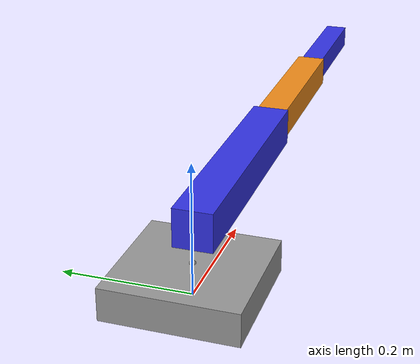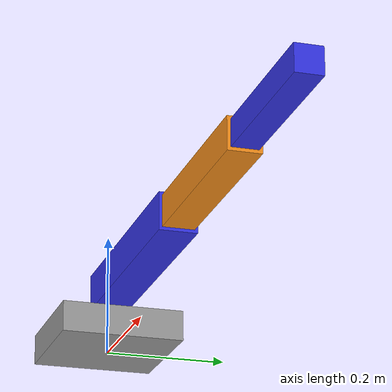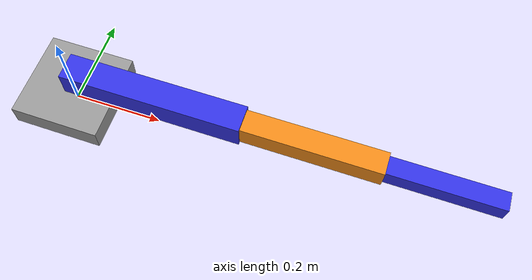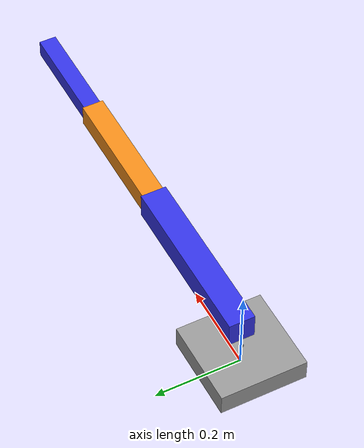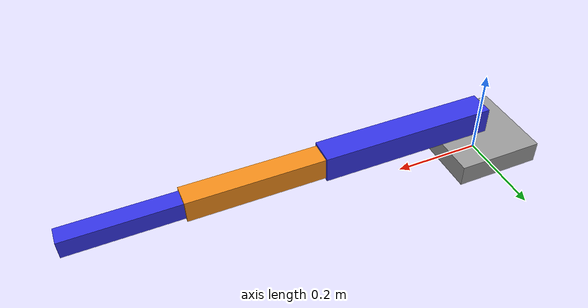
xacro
<?xml version="1.0"?>
<robot name="simple_arm" xmlns:xacro="http://www.ros.org/wiki/xacro">

  <!-- ====== Materials ====== -->
  <material name="gray">   <color rgba="0.6 0.6 0.6 1"/></material>
  <material name="blue">   <color rgba="0.2 0.2 0.9 1"/></material>
  <material name="orange"> <color rgba="0.95 0.55 0.1 1"/></material>

  <!-- ====== Link dimensions & masses ====== -->
  <xacro:property name="base_lx"    value="0.20"/>
  <xacro:property name="base_ly"    value="0.20"/>
  <xacro:property name="base_lz"    value="0.05"/>
  <xacro:property name="base_mass"  value="10.0"/>

  <xacro:property name="link1_lx"   value="0.40"/>
  <xacro:property name="link1_ly"   value="0.06"/>
  <xacro:property name="link1_lz"   value="0.06"/>
  <xacro:property name="link1_mass" value="1.0"/>

  <xacro:property name="link2_lx"   value="0.30"/>
  <xacro:property name="link2_ly"   value="0.05"/>
  <xacro:property name="link2_lz"   value="0.05"/>
  <xacro:property name="link2_mass" value="0.7"/>

  <xacro:property name="link3_lx"   value="0.24"/>
  <xacro:property name="link3_ly"   value="0.04"/>
  <xacro:property name="link3_lz"   value="0.04"/>
  <xacro:property name="link3_mass" value="0.4"/>

  <!-- ====== Joint defaults ====== -->
  <xacro:property name="limit_std" value="1.57"/>
  <xacro:property name="vel_std"   value="1.5"/>
  <xacro:property name="damp_std"  value="0.5"/>
  <xacro:property name="fric_std"  value="0.05"/>

  <!-- ====== Macros ====== -->
  <!--
    box_link: 박스 형태 링크 (visual + collision + inertial 자동 계산)
    CoM 위치(ox, oy, oz)는 링크 프레임 기준 오프셋.
    관성 텐서는 균일 박스 공식으로 계산.
  -->
  <xacro:macro name="box_link" params="name ox oy oz lx ly lz mass color">
    <link name="${name}">
      <visual>
        <origin xyz="${ox} ${oy} ${oz}" rpy="0 0 0"/>
        <geometry><box size="${lx} ${ly} ${lz}"/></geometry>
        <material name="${color}"/>
      </visual>
      <collision>
        <origin xyz="${ox} ${oy} ${oz}" rpy="0 0 0"/>
        <geometry><box size="${lx} ${ly} ${lz}"/></geometry>
      </collision>
      <inertial>
        <origin xyz="${ox} ${oy} ${oz}" rpy="0 0 0"/>
        <mass value="${mass}"/>
        <inertia
          ixx="${mass / 12.0 * (ly*ly + lz*lz)}" ixy="0" ixz="0"
          iyy="${mass / 12.0 * (lx*lx + lz*lz)}" iyz="0"
          izz="${mass / 12.0 * (lx*lx + ly*ly)}"/>
      </inertial>
    </link>
  </xacro:macro>

  <!--
    revolute_joint: 표준 회전 조인트
  -->
  <xacro:macro name="revolute_joint" params="name parent child xyz axis lower upper effort">
    <joint name="${name}" type="revolute">
      <parent link="${parent}"/>
      <child link="${child}"/>
      <origin xyz="${xyz}" rpy="0 0 0"/>
      <axis xyz="${axis}"/>
      <limit lower="${lower}" upper="${upper}" effort="${effort}" velocity="${vel_std}"/>
      <dynamics damping="${damp_std}" friction="${fric_std}"/>
    </joint>
  </xacro:macro>

  <!-- world anchor -->
  <link name="world"/>
  <joint name="world_joint" type="fixed">
    <parent link="world"/>
    <child link="base_link"/>
    <origin xyz="0 0 0" rpy="0 0 0"/>
  </joint>

  <!-- ====== Links ====== -->
  <xacro:box_link name="base_link"
    ox="0" oy="0" oz="${base_lz / 2}"
    lx="${base_lx}" ly="${base_ly}" lz="${base_lz}"
    mass="${base_mass}" color="gray"/>

  <!-- link1_yaw: z축 회전을 위한 더미 링크 (Gazebo가 제거하지 않도록 최소 geometry 포함) -->
  <link name="link1_yaw">
    <visual><origin xyz="0 0 0" rpy="0 0 0"/><geometry><sphere radius="0.005"/></geometry><material name="gray"/></visual>
    <collision><origin xyz="0 0 0" rpy="0 0 0"/><geometry><sphere radius="0.005"/></geometry></collision>
    <inertial>
      <origin xyz="0 0 0" rpy="0 0 0"/>
      <mass value="0.001"/>
      <inertia ixx="1e-6" ixy="0" ixz="0" iyy="1e-6" iyz="0" izz="1e-6"/>
    </inertial>
  </link>

  <xacro:box_link name="link1"
    ox="${link1_lx / 2}" oy="0" oz="0.05"
    lx="${link1_lx}" ly="${link1_ly}" lz="${link1_lz}"
    mass="${link1_mass}" color="blue"/>

  <xacro:box_link name="link2"
    ox="${link2_lx / 2}" oy="0" oz="0.05"
    lx="${link2_lx}" ly="${link2_ly}" lz="${link2_lz}"
    mass="${link2_mass}" color="orange"/>

  <xacro:box_link name="link3"
    ox="${link3_lx / 2}" oy="0" oz="0.05"
    lx="${link3_lx}" ly="${link3_ly}" lz="${link3_lz}"
    mass="${link3_mass}" color="blue"/>

  <!-- ====== Joints ====== -->
  <xacro:revolute_joint name="joint1_z"
    parent="base_link" child="link1_yaw"
    xyz="0 0 ${base_lz}" axis="0 0 1"
    lower="-${limit_std}" upper="${limit_std}" effort="10"/>

  <xacro:revolute_joint name="joint1_y"
    parent="link1_yaw" child="link1"
    xyz="0 0 0" axis="0 -1 0"
    lower="0.0" upper="${limit_std}" effort="10"/>

  <xacro:revolute_joint name="joint2"
    parent="link1" child="link2"
    xyz="${link1_lx} 0 0" axis="0 1 0"
    lower="-${limit_std}" upper="${limit_std}" effort="10"/>

  <xacro:revolute_joint name="joint3"
    parent="link2" child="link3"
    xyz="${link2_lx} 0 0" axis="0 1 0"
    lower="-${limit_std}" upper="${limit_std}" effort="8"/>

  <!-- ====== Gazebo ====== -->
  <gazebo reference="base_link">
    <mu1>1.0</mu1>
    <mu2>1.0</mu2>
  </gazebo>

  <gazebo>
    <plugin name="gazebo_ros2_control" filename="libgazebo_ros2_control.so">
      <robot_param>robot_description</robot_param>
      <robot_param_node>robot_state_publisher</robot_param_node>
      <parameters>$(find simple_arm_description)/config/controllers.yaml</parameters>
    </plugin>
  </gazebo>

  <!-- ====== ros2_control ====== -->
  <ros2_control name="SimpleArmSystem" type="system">
    <hardware>
      <plugin>gazebo_ros2_control/GazeboSystem</plugin>
    </hardware>

    <joint name="joint1_z">
      <command_interface name="effort"/>
      <state_interface name="position"/>
      <state_interface name="velocity"/>
    </joint>

    <joint name="joint1_y">
      <command_interface name="effort"/>
      <state_interface name="position"/>
      <state_interface name="velocity"/>
    </joint>

    <joint name="joint2">
      <command_interface name="effort"/>
      <state_interface name="position"/>
      <state_interface name="velocity"/>
    </joint>

    <joint name="joint3">
      <command_interface name="effort"/>
      <state_interface name="position"/>
      <state_interface name="velocity"/>
    </joint>
  </ros2_control>
</robot>
